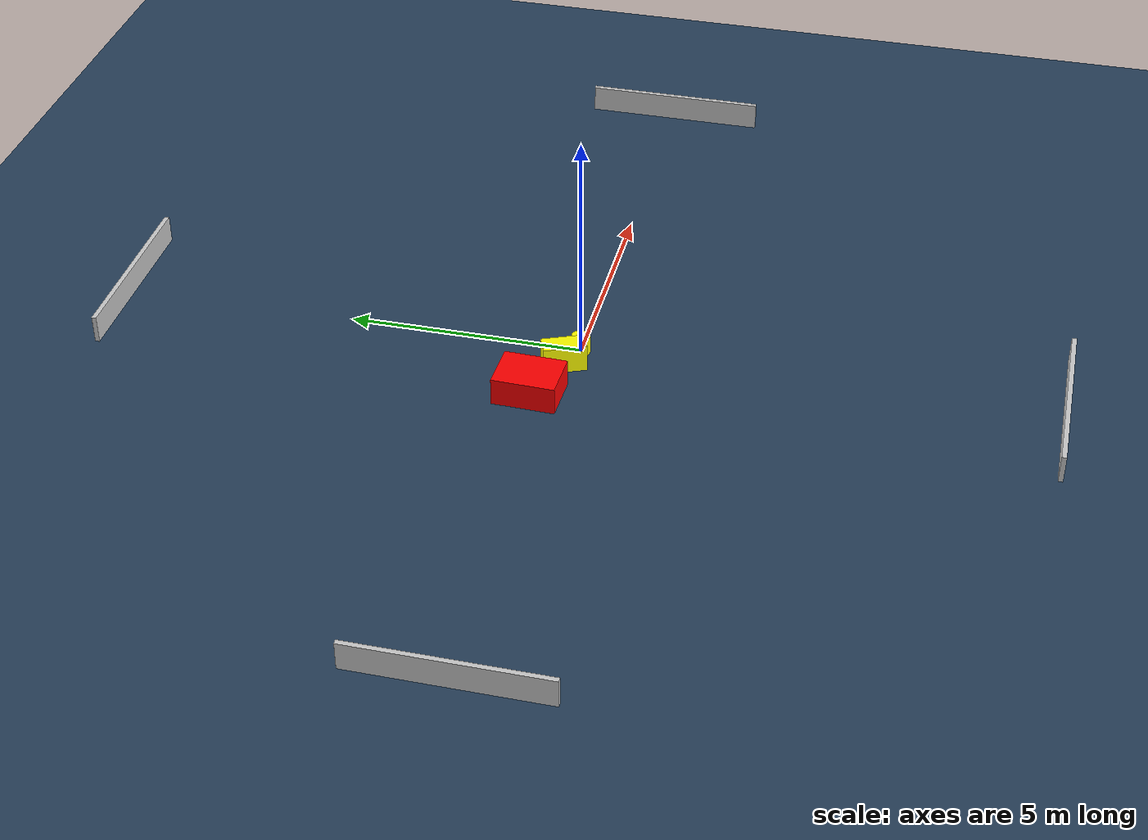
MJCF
<?xml version="1.0" ?>
<mujoco model="generated_environment">
  <option timestep="0.01" integrator="RK4" cone="elliptic"/>
  <default>
    <geom density="1"/>
  </default>
  <asset>
    <texture builtin="gradient" height="3072" name="skybox" rgb1="0.3 0.5 0.7" rgb2="0 0 0" type="skybox" width="512"/>
    <texture builtin="checker" height="300" name="groundplane" rgb1="0.2 0.3 0.4" rgb2="0.1 0.2 0.3" type="2d" width="300"/>
    <material name="groundplane" reflectance="0.2" texrepeat="5 5" texture="groundplane"/>
  </asset>
  <worldbody>
    <light dir="0 0 -1" directional="true" pos="0 0 1.5"/>
    <geom condim="3" friction="0.5 0.005 0.001" material="groundplane" name="floor" pos="0 0 0" size="0 0 0.05" type="plane"/>
    <body name="walls">
      <geom name="wall_1" condim="4" pos="-10.0 0.0 0.3" rgba="0.800000011920929 0.800000011920929 0.800000011920929 1.0" size="0.05 2.0 0.3" type="box"/>
      <geom name="wall_2" condim="4" pos="10.0 0.0 0.3" rgba="0.800000011920929 0.800000011920929 0.800000011920929 1.0" size="0.05 2.0 0.3" type="box"/>
      <geom name="wall_3" condim="4" pos="0.0 -10.0 0.3" rgba="0.800000011920929 0.800000011920929 0.800000011920929 1.0" size="2.0 0.05 0.3" type="box"/>
      <geom name="wall_4" condim="4" pos="0.0 10.0 0.3" rgba="0.800000011920929 0.800000011920929 0.800000011920929 1.0" size="2.0 0.05 0.3" type="box"/>
    </body>
    <body name="robot">
      <joint name="joint_x" type="slide" pos="0 0 0" axis="1 0 0"/>
      <joint name="joint_y" type="slide" pos="0 0 0" axis="0 1 0"/>
      <geom name="robot" type="cylinder" pos="0.0 0.0 0.2" size="0.2 0.2 0.0" mass="5.0" friction="1.0 0.005 0.0001" condim="4" rgba="1.0 1.0 0.0 1.0"/>
    </body>
    <body name="obstacle_1_movable">
      <geom name="obstacle_1_movable" condim="4" pos="-0.5888118501752756 0.22402997310758313 0.3" euler="0 0 112.86334703993629" friction="0.0 0.005 0.001" rgba="1.0 1.0 0.0 1.0" size="0.45524376401750394 0.21338085843568333 0.3" type="box" mass="0.1"/>
      <joint type="free"/>
    </body>
    <body name="obstacle_2_static">
      <geom name="obstacle_2_static" condim="4" pos="-1.6715515464499506 0.6801216996354478 0.3" euler="0 0 358.43504520467087" friction="0.0 0.005 0.001" rgba="1.0 0.0 0.0 1.0" size="0.5076382607587159 0.6668593759135711 0.3" type="box"/>
    </body>
  </worldbody>
  <actuator>
    <motor name="actuator_x" joint="joint_x" gear="1" ctrlrange="-1 1"/>
    <motor name="actuator_y" joint="joint_y" gear="1" ctrlrange="-1 1"/>
  </actuator>
</mujoco>
